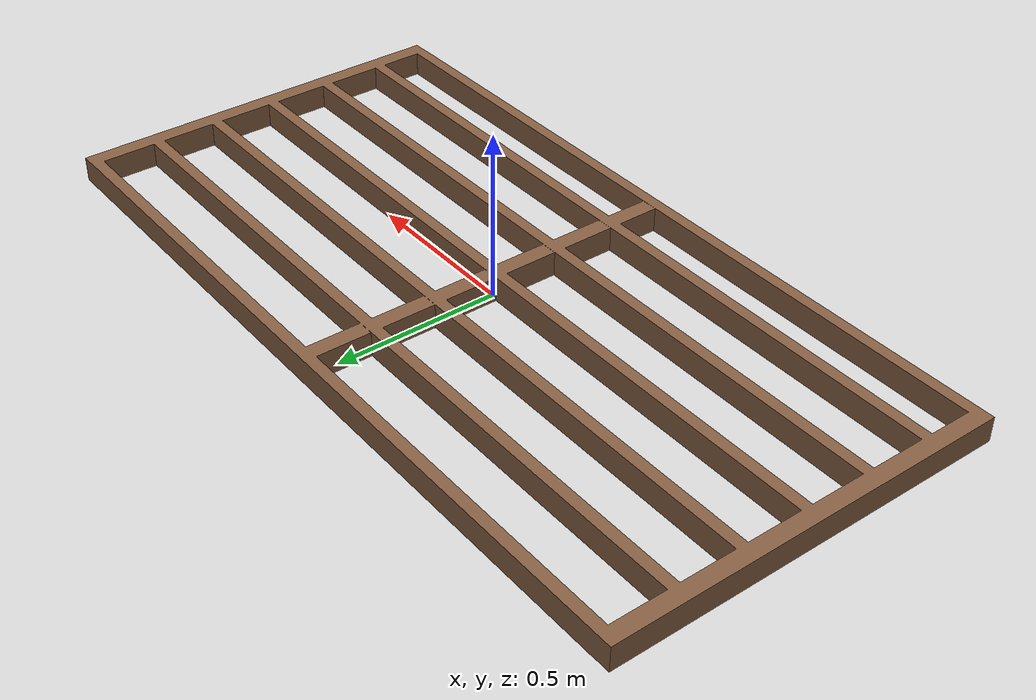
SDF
<?xml version='1.0'?>
<sdf version='1.6'>
  <model name='Frame'>
    <static>0</static>
    <link name='link'>
      <!-- Bug? The stack's orientation aligns with y-axis, but frame pose must be 90 degrees to align with y-axis -->
      <pose frame=''>0 0 0 0 -0 1.570796</pose>
      <self_collide>0</self_collide>
      <kinematic>0</kinematic>
      <gravity>1</gravity>
      <visual name='visual'>
        <pose frame=''>0 0 0 0 -0 0</pose>
        <geometry>
          <mesh>
            <uri>model://frame/meshes/frame.dae</uri>
          </mesh>
        </geometry>
        <material>
          <shader type='pixel'>
            <normal_map>__default__</normal_map>
          </shader>
          <ambient>0.52 0.37 0.26 1</ambient>
          <diffuse>0.52 0.37 0.26 0</diffuse>
          <specular>1 0.55 0.39 0</specular>
          <emissive>0 0 0 1</emissive>
        </material>
        <cast_shadows>false</cast_shadows>
        <transparency>0</transparency>
      </visual>
      <collision name='collision'>
        <pose frame=''>0.01 0.0 0.04 0 -0 1.570796</pose>
        <geometry>
          <box>
            <size>2.4 1.21 0.075</size>
          </box>
        </geometry>
        <surface>
          <contact>
            <collide_bitmask>0x01</collide_bitmask>
          </contact>
        </surface>
      </collision>
    </link>
    <allow_auto_disable>1</allow_auto_disable>
  </model>
</sdf>
